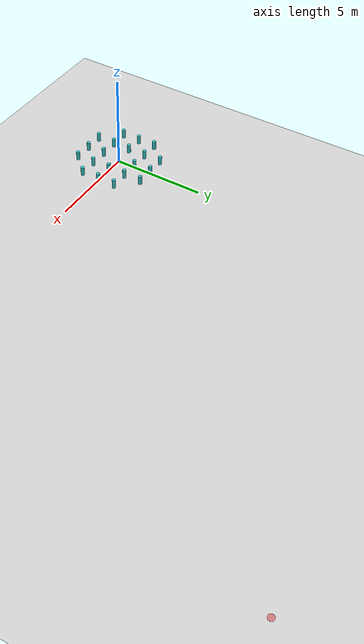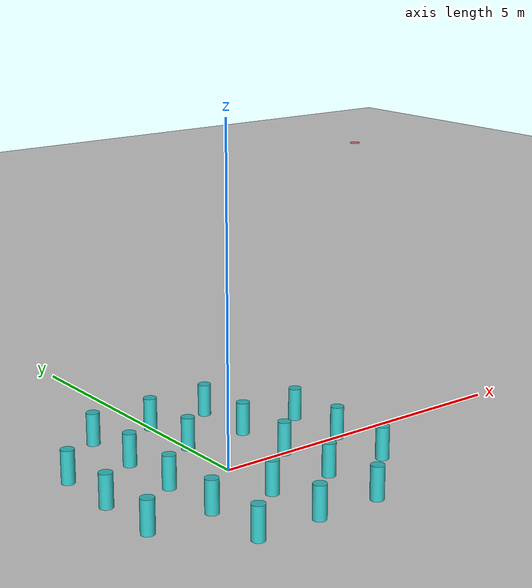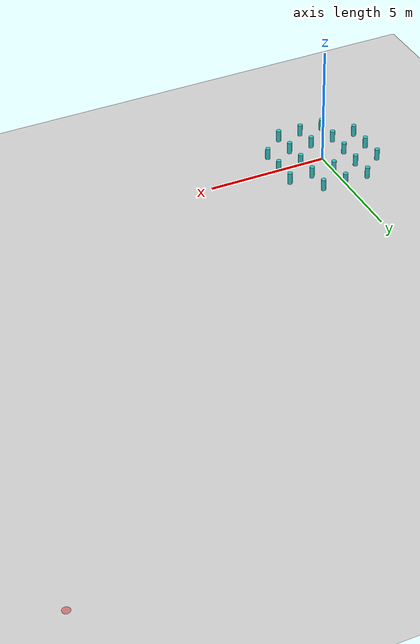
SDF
<sdf version='1.4'>
  <world name='default'>
    <!-- A global light source -->
    <include>
      <uri>model://sun</uri>
    </include>

    <!-- A ground plane -->
    <include>
      <uri>model://ground_plane</uri>
    </include>

    <physics type="ode">
      <real_time_update_rate>1000.0</real_time_update_rate>
      <max_step_size>0.001</max_step_size>
      <real_time_factor>1</real_time_factor>
      <ode>
        <solver>
          <type>quick</type>
          <iters>150</iters>
          <precon_iters>0</precon_iters>
          <sor>1.400000</sor>
          <use_dynamic_moi_rescaling>1</use_dynamic_moi_rescaling>
        </solver>
        <constraints>
          <cfm>0.00001</cfm>
          <erp>0.2</erp>
          <contact_max_correcting_vel>2000.000000</contact_max_correcting_vel>
          <contact_surface_layer>0.01000</contact_surface_layer>
        </constraints>
      </ode>
    </physics>

    <!-- goal -->
    <model name='goal'>
      <pose frame=''>19 19 0 0 0 0</pose>
      <link name='goal'>
        <collision name='goal'>
          <pose>0 0 0.001 0 0 0</pose>
          <geometry>
            <cylinder>
              <radius>0.001</radius>
              <length>0.002</length>
            </cylinder>
          </geometry>
          <max_contacts>10</max_contacts>
          <surface>
            <bounce/>
            <friction>
              <ode/>
            </friction>
            <contact>
              <ode/>
            </contact>
          </surface>
        </collision>

        <visual name='goal'>
          <pose>0 0 0.01 0 0 0</pose>
          <geometry>
            <cylinder>
              <radius>0.15</radius>
              <length>0.02</length>
            </cylinder>
          </geometry>
          <material>
            <script>
              <uri>file://media/materials/scripts/gazebo.material</uri>
              <name>Gazebo/RedTransparent</name>
            </script>
          </material>
        </visual>
      </link>
    </model>

    <!-- obstacle -->
    <model name='obstacle'>
      <pose frame=''>0 0 0 0 0 0</pose>
      <link name='obstacle'>
        <collision name='obstacle_0'>
          <pose>-1 2 0.25 0 0 0</pose>
          <geometry>
            <cylinder>
              <radius>0.1</radius>
              <length>0.5</length>
            </cylinder>
          </geometry>
          <max_contacts>10</max_contacts>
          <surface>
            <bounce/>
            <friction>
              <ode/>
            </friction>
            <contact>
              <ode/>
            </contact>
          </surface>
        </collision>

        <visual name='obstacle_0'>
          <pose>-1 2 0.25 0 0 0</pose>
          <geometry>
            <cylinder>
              <radius>0.1</radius>
              <length>0.5</length>
            </cylinder>
          </geometry>
          <material>
            <script>
              <uri>file://media/materials/scripts/gazebo.material</uri>
              <name>Gazebo/Turquoise</name>
            </script>
          </material>
        </visual>

        <collision name='obstacle_1'>
          <pose>0 2 0.25 0 0 0</pose>
          <geometry>
            <cylinder>
              <radius>0.1</radius>
              <length>0.5</length>
            </cylinder>
          </geometry>
          <max_contacts>10</max_contacts>
          <surface>
            <bounce/>
            <friction>
              <ode/>
            </friction>
            <contact>
              <ode/>
            </contact>
          </surface>
        </collision>

        <visual name='obstacle_1'>
          <pose>0 2 0.25 0 0 0</pose>
          <geometry>
            <cylinder>
              <radius>0.1</radius>
              <length>0.5</length>
            </cylinder>
          </geometry>
          <material>
            <script>
              <uri>file://media/materials/scripts/gazebo.material</uri>
              <name>Gazebo/Turquoise</name>
            </script>
          </material>
        </visual>

        <collision name='obstacle_2'>
          <pose>1 2 0.25 0 0 0</pose>
          <geometry>
            <cylinder>
              <radius>0.1</radius>
              <length>0.5</length>
            </cylinder>
          </geometry>
          <max_contacts>10</max_contacts>
          <surface>
            <bounce/>
            <friction>
              <ode/>
            </friction>
            <contact>
              <ode/>
            </contact>
          </surface>
        </collision>

        <visual name='obstacle_2'>
          <pose>1 2 0.25 0 0 0</pose>
          <geometry>
            <cylinder>
              <radius>0.1</radius>
              <length>0.5</length>
            </cylinder>
          </geometry>
          <material>
            <script>
              <uri>file://media/materials/scripts/gazebo.material</uri>
              <name>Gazebo/Turquoise</name>
            </script>
          </material>
        </visual>

        <collision name='obstacle_3'>
          <pose>-2 1 0.25 0 0 0</pose>
          <geometry>
            <cylinder>
              <radius>0.1</radius>
              <length>0.5</length>
            </cylinder>
          </geometry>
          <max_contacts>10</max_contacts>
          <surface>
            <bounce/>
            <friction>
              <ode/>
            </friction>
            <contact>
              <ode/>
            </contact>
          </surface>
        </collision>

        <visual name='obstacle_3'>
          <pose>-2 1 0.25 0 0 0</pose>
          <geometry>
            <cylinder>
              <radius>0.1</radius>
              <length>0.5</length>
            </cylinder>
          </geometry>
          <material>
            <script>
              <uri>file://media/materials/scripts/gazebo.material</uri>
              <name>Gazebo/Turquoise</name>
            </script>
          </material>
        </visual>

        <collision name='obstacle_4'>
          <pose>-1 1 0.25 0 0 0</pose>
          <geometry>
            <cylinder>
              <radius>0.1</radius>
              <length>0.5</length>
            </cylinder>
          </geometry>
          <max_contacts>10</max_contacts>
          <surface>
            <bounce/>
            <friction>
              <ode/>
            </friction>
            <contact>
              <ode/>
            </contact>
          </surface>
        </collision>

        <visual name='obstacle_4'>
          <pose>-1 1 0.25 0 0 0</pose>
          <geometry>
            <cylinder>
              <radius>0.1</radius>
              <length>0.5</length>
            </cylinder>
          </geometry>
          <material>
            <script>
              <uri>file://media/materials/scripts/gazebo.material</uri>
              <name>Gazebo/Turquoise</name>
            </script>
          </material>
        </visual>

        <collision name='obstacle_5'>
          <pose>0 1 0.25 0 0 0</pose>
          <geometry>
            <cylinder>
              <radius>0.1</radius>
              <length>0.5</length>
            </cylinder>
          </geometry>
          <max_contacts>10</max_contacts>
          <surface>
            <bounce/>
            <friction>
              <ode/>
            </friction>
            <contact>
              <ode/>
            </contact>
          </surface>
        </collision>

        <visual name='obstacle_5'>
          <pose>0 1 0.25 0 0 0</pose>
          <geometry>
            <cylinder>
              <radius>0.1</radius>
              <length>0.5</length>
            </cylinder>
          </geometry>
          <material>
            <script>
              <uri>file://media/materials/scripts/gazebo.material</uri>
              <name>Gazebo/Turquoise</name>
            </script>
          </material>
        </visual>

        <collision name='obstacle_6'>
          <pose>1 1 0.25 0 0 0</pose>
          <geometry>
            <cylinder>
              <radius>0.1</radius>
              <length>0.5</length>
            </cylinder>
          </geometry>
          <max_contacts>10</max_contacts>
          <surface>
            <bounce/>
            <friction>
              <ode/>
            </friction>
            <contact>
              <ode/>
            </contact>
          </surface>
        </collision>

        <visual name='obstacle_6'>
          <pose>1 1 0.25 0 0 0</pose>
          <geometry>
            <cylinder>
              <radius>0.1</radius>
              <length>0.5</length>
            </cylinder>
          </geometry>
          <material>
            <script>
              <uri>file://media/materials/scripts/gazebo.material</uri>
              <name>Gazebo/Turquoise</name>
            </script>
          </material>
        </visual>

        <collision name='obstacle_7'>
          <pose>2 1 0.25 0 0 0</pose>
          <geometry>
            <cylinder>
              <radius>0.1</radius>
              <length>0.5</length>
            </cylinder>
          </geometry>
          <max_contacts>10</max_contacts>
          <surface>
            <bounce/>
            <friction>
              <ode/>
            </friction>
            <contact>
              <ode/>
            </contact>
          </surface>
        </collision>

        <visual name='obstacle_7'>
          <pose>2 1 0.25 0 0 0</pose>
          <geometry>
            <cylinder>
              <radius>0.1</radius>
              <length>0.5</length>
            </cylinder>
          </geometry>
          <material>
            <script>
              <uri>file://media/materials/scripts/gazebo.material</uri>
              <name>Gazebo/Turquoise</name>
            </script>
          </material>
        </visual>

        <collision name='obstacle_8'>
          <pose>-2 0 0.25 0 0 0</pose>
          <geometry>
            <cylinder>
              <radius>0.1</radius>
              <length>0.5</length>
            </cylinder>
          </geometry>
          <max_contacts>10</max_contacts>
          <surface>
            <bounce/>
            <friction>
              <ode/>
            </friction>
            <contact>
              <ode/>
            </contact>
          </surface>
        </collision>

        <visual name='obstacle_8'>
          <pose>-2 0 0.25 0 0 0</pose>
          <geometry>
            <cylinder>
              <radius>0.1</radius>
              <length>0.5</length>
            </cylinder>
          </geometry>
          <material>
            <script>
              <uri>file://media/materials/scripts/gazebo.material</uri>
              <name>Gazebo/Turquoise</name>
            </script>
          </material>
        </visual>

        <collision name='obstacle_9'>
          <pose>-1 0 0.25 0 0 0</pose>
          <geometry>
            <cylinder>
              <radius>0.1</radius>
              <length>0.5</length>
            </cylinder>
          </geometry>
          <max_contacts>10</max_contacts>
          <surface>
            <bounce/>
            <friction>
              <ode/>
            </friction>
            <contact>
              <ode/>
            </contact>
          </surface>
        </collision>

        <visual name='obstacle_9'>
          <pose>-1 0 0.25 0 0 0</pose>
          <geometry>
            <cylinder>
              <radius>0.1</radius>
              <length>0.5</length>
            </cylinder>
          </geometry>
          <material>
            <script>
              <uri>file://media/materials/scripts/gazebo.material</uri>
              <name>Gazebo/Turquoise</name>
            </script>
          </material>
        </visual>

        <collision name='obstacle_10'>
          <pose>1 0 0.25 0 0 0</pose>
          <geometry>
            <cylinder>
              <radius>0.1</radius>
              <length>0.5</length>
            </cylinder>
          </geometry>
          <max_contacts>10</max_contacts>
          <surface>
            <bounce/>
            <friction>
              <ode/>
            </friction>
            <contact>
              <ode/>
            </contact>
          </surface>
        </collision>

        <visual name='obstacle_10'>
          <pose>1 0 0.25 0 0 0</pose>
          <geometry>
            <cylinder>
              <radius>0.1</radius>
              <length>0.5</length>
            </cylinder>
          </geometry>
          <material>
            <script>
              <uri>file://media/materials/scripts/gazebo.material</uri>
              <name>Gazebo/Turquoise</name>
            </script>
          </material>
        </visual>

        <collision name='obstacle_11'>
          <pose>2 0 0.25 0 0 0</pose>
          <geometry>
            <cylinder>
              <radius>0.1</radius>
              <length>0.5</length>
            </cylinder>
          </geometry>
          <max_contacts>10</max_contacts>
          <surface>
            <bounce/>
            <friction>
              <ode/>
            </friction>
            <contact>
              <ode/>
            </contact>
          </surface>
        </collision>

        <visual name='obstacle_11'>
          <pose>2 0 0.25 0 0 0</pose>
          <geometry>
            <cylinder>
              <radius>0.1</radius>
              <length>0.5</length>
            </cylinder>
          </geometry>
          <material>
            <script>
              <uri>file://media/materials/scripts/gazebo.material</uri>
              <name>Gazebo/Turquoise</name>
            </script>
          </material>
        </visual>

        <collision name='obstacle_12'>
          <pose>-2 -1 0.25 0 0 0</pose>
          <geometry>
            <cylinder>
              <radius>0.1</radius>
              <length>0.5</length>
            </cylinder>
          </geometry>
          <max_contacts>10</max_contacts>
          <surface>
            <bounce/>
            <friction>
              <ode/>
            </friction>
            <contact>
              <ode/>
            </contact>
          </surface>
        </collision>

        <visual name='obstacle_12'>
          <pose>-2 -1 0.25 0 0 0</pose>
          <geometry>
            <cylinder>
              <radius>0.1</radius>
              <length>0.5</length>
            </cylinder>
          </geometry>
          <material>
            <script>
              <uri>file://media/materials/scripts/gazebo.material</uri>
              <name>Gazebo/Turquoise</name>
            </script>
          </material>
        </visual>

        <collision name='obstacle_13'>
          <pose>-1 -1 0.25 0 0 0</pose>
          <geometry>
            <cylinder>
              <radius>0.1</radius>
              <length>0.5</length>
            </cylinder>
          </geometry>
          <max_contacts>10</max_contacts>
          <surface>
            <bounce/>
            <friction>
              <ode/>
            </friction>
            <contact>
              <ode/>
            </contact>
          </surface>
        </collision>

        <visual name='obstacle_13'>
          <pose>-1 -1 0.25 0 0 0</pose>
          <geometry>
            <cylinder>
              <radius>0.1</radius>
              <length>0.5</length>
            </cylinder>
          </geometry>
          <material>
            <script>
              <uri>file://media/materials/scripts/gazebo.material</uri>
              <name>Gazebo/Turquoise</name>
            </script>
          </material>
        </visual>

        <collision name='obstacle_14'>
          <pose>0 -1 0.25 0 0 0</pose>
          <geometry>
            <cylinder>
              <radius>0.1</radius>
              <length>0.5</length>
            </cylinder>
          </geometry>
          <max_contacts>10</max_contacts>
          <surface>
            <bounce/>
            <friction>
              <ode/>
            </friction>
            <contact>
              <ode/>
            </contact>
          </surface>
        </collision>

        <visual name='obstacle_14'>
          <pose>0 -1 0.25 0 0 0</pose>
          <geometry>
            <cylinder>
              <radius>0.1</radius>
              <length>0.5</length>
            </cylinder>
          </geometry>
          <material>
            <script>
              <uri>file://media/materials/scripts/gazebo.material</uri>
              <name>Gazebo/Turquoise</name>
            </script>
          </material>
        </visual>

        <collision name='obstacle_15'>
          <pose>1 -1 0.25 0 0 0</pose>
          <geometry>
            <cylinder>
              <radius>0.1</radius>
              <length>0.5</length>
            </cylinder>
          </geometry>
          <max_contacts>10</max_contacts>
          <surface>
            <bounce/>
            <friction>
              <ode/>
            </friction>
            <contact>
              <ode/>
            </contact>
          </surface>
        </collision>

        <visual name='obstacle_15'>
          <pose>1 -1 0.25 0 0 0</pose>
          <geometry>
            <cylinder>
              <radius>0.1</radius>
              <length>0.5</length>
            </cylinder>
          </geometry>
          <material>
            <script>
              <uri>file://media/materials/scripts/gazebo.material</uri>
              <name>Gazebo/Turquoise</name>
            </script>
          </material>
        </visual>

        <collision name='obstacle_16'>
          <pose>2 -1 0.25 0 0 0</pose>
          <geometry>
            <cylinder>
              <radius>0.1</radius>
              <length>0.5</length>
            </cylinder>
          </geometry>
          <max_contacts>10</max_contacts>
          <surface>
            <bounce/>
            <friction>
              <ode/>
            </friction>
            <contact>
              <ode/>
            </contact>
          </surface>
        </collision>

        <visual name='obstacle_16'>
          <pose>2 -1 0.25 0 0 0</pose>
          <geometry>
            <cylinder>
              <radius>0.1</radius>
              <length>0.5</length>
            </cylinder>
          </geometry>
          <material>
            <script>
              <uri>file://media/materials/scripts/gazebo.material</uri>
              <name>Gazebo/Turquoise</name>
            </script>
          </material>
        </visual>

        <collision name='obstacle_17'>
          <pose>-1 -2 0.25 0 0 0</pose>
          <geometry>
            <cylinder>
              <radius>0.1</radius>
              <length>0.5</length>
            </cylinder>
          </geometry>
          <max_contacts>10</max_contacts>
          <surface>
            <bounce/>
            <friction>
              <ode/>
            </friction>
            <contact>
              <ode/>
            </contact>
          </surface>
        </collision>

        <visual name='obstacle_17'>
          <pose>-1 -2 0.25 0 0 0</pose>
          <geometry>
            <cylinder>
              <radius>0.1</radius>
              <length>0.5</length>
            </cylinder>
          </geometry>
          <material>
            <script>
              <uri>file://media/materials/scripts/gazebo.material</uri>
              <name>Gazebo/Turquoise</name>
            </script>
          </material>
        </visual>

        <collision name='obstacle_18'>
          <pose>0 -2 0.25 0 0 0</pose>
          <geometry>
            <cylinder>
              <radius>0.1</radius>
              <length>0.5</length>
            </cylinder>
          </geometry>
          <max_contacts>10</max_contacts>
          <surface>
            <bounce/>
            <friction>
              <ode/>
            </friction>
            <contact>
              <ode/>
            </contact>
          </surface>
        </collision>

        <visual name='obstacle_18'>
          <pose>0 -2 0.25 0 0 0</pose>
          <geometry>
            <cylinder>
              <radius>0.1</radius>
              <length>0.5</length>
            </cylinder>
          </geometry>
          <material>
            <script>
              <uri>file://media/materials/scripts/gazebo.material</uri>
              <name>Gazebo/Turquoise</name>
            </script>
          </material>
        </visual>

        <collision name='obstacle_19'>
          <pose>1 -2 0.25 0 0 0</pose>
          <geometry>
            <cylinder>
              <radius>0.1</radius>
              <length>0.5</length>
            </cylinder>
          </geometry>
          <max_contacts>10</max_contacts>
          <surface>
            <bounce/>
            <friction>
              <ode/>
            </friction>
            <contact>
              <ode/>
            </contact>
          </surface>
        </collision>

        <visual name='obstacle_19'>
          <pose>1 -2 0.25 0 0 0</pose>
          <geometry>
            <cylinder>
              <radius>0.1</radius>
              <length>0.5</length>
            </cylinder>
          </geometry>
          <material>
            <script>
              <uri>file://media/materials/scripts/gazebo.material</uri>
              <name>Gazebo/Turquoise</name>
            </script>
          </material>
        </visual>

      </link>
    </model>

    <scene>
      <ambient>0.4 0.4 0.4 1</ambient>
      <background>0.7 0.7 0.7 1</background>
      <shadows>false</shadows>
    </scene>

    <gui fullscreen='0'>
      <camera name='user_camera'>
        <pose>0.0 0.0 17.0 0 1.57079632679 1.57079632679</pose>
        <view_controller>orbit</view_controller>
      </camera>
    </gui>
  </world>
</sdf>
